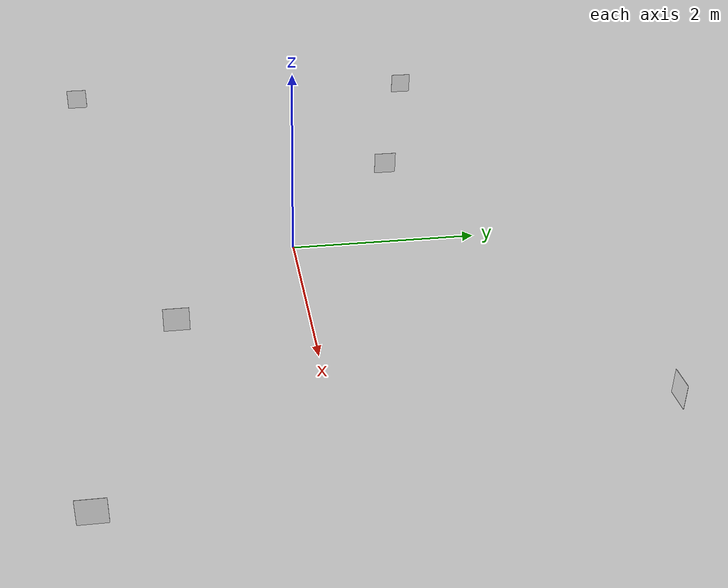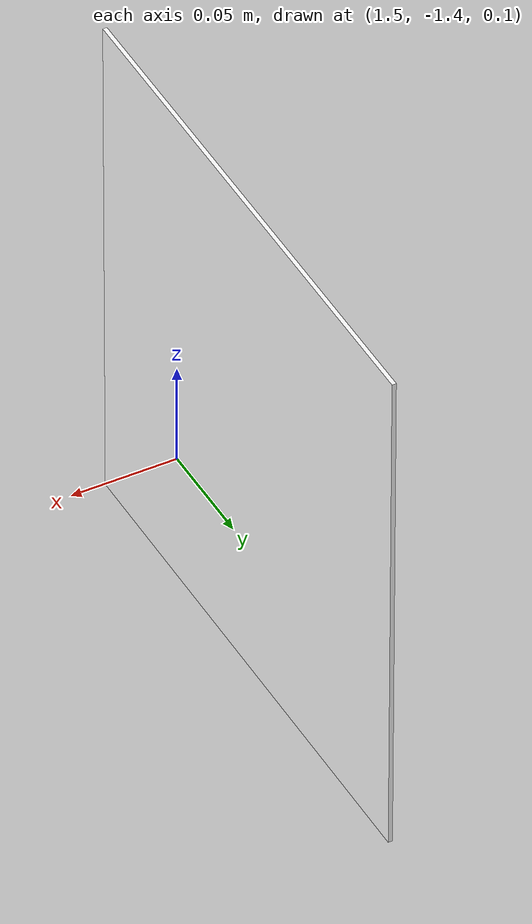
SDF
<?xml version="1.0"?>

<sdf version="1.7">

  <model name="apriltags_10cm">

    <static>true</static>

    <!-- TAG 0 - outside                                            -->
    <!-- Lower-left branch                                          -->
    <!-- Mounted on west outer wall and facing east                 -->

    <link name="tag36_11_00000">

      <pose>-3.99 -2.50 0.20 0 0 -1.570796</pose>

      <visual name="visual">

        <geometry>
          <box>
            <size>0.25 0.002 0.25</size>
          </box>
        </geometry>

        <material>

          <ambient>1 1 1 1</ambient>
          <diffuse>1 1 1 1</diffuse>
          <specular>0 0 0 1</specular>

          <pbr>
            <metal>

              <albedo_map>
                model://apriltags_10cm/materials/textures/tag36_11_00000.png
              </albedo_map>

              <roughness>1.0</roughness>
              <metalness>0.0</metalness>

            </metal>
          </pbr>

        </material>

        <cast_shadows>false</cast_shadows>

      </visual>

    </link>

    <!-- TAG 1 - inside                                             -->
    <!-- Lower-right L, inner leg                                   -->
    <!-- Internal wall: lower_right_vertical_link                   -->
    <!--   x = 1.55 (wall center), y = -2.10 to -0.50                -->
    <!-- Tag mounted on the wall's inner (west) face and facing west,-->
    <!-- i.e. into the arena interior                                -->

    <link name="tag36_11_00001">

      <!--
        Wall center is x = 1.55, inner face at x = 1.525.
        Tag sits just proud of that face, on the interior side.
      -->

      <pose>1.520 -1.30 0.20 0 0 1.570796</pose>

      <visual name="visual">

        <geometry>
          <box>
            <size>0.25 0.002 0.25</size>
          </box>
        </geometry>

        <material>

          <ambient>1 1 1 1</ambient>
          <diffuse>1 1 1 1</diffuse>
          <specular>0 0 0 1</specular>

          <pbr>
            <metal>

              <albedo_map>
                model://apriltags_10cm/materials/textures/tag36_11_00001.png
              </albedo_map>

              <roughness>1.0</roughness>
              <metalness>0.0</metalness>

            </metal>
          </pbr>

        </material>

        <cast_shadows>false</cast_shadows>

      </visual>

    </link>

    <!-- TAG 5 - outside                                            -->
    <!-- Lower-right branch                                         -->
    <!-- Mounted on east outer wall and facing west                 -->

    <link name="tag36_11_00005">

      <pose>3.99 -2.0 0.20 0 0 1.570796</pose>

      <visual name="visual">

        <geometry>
          <box>
            <size>0.25 0.002 0.25</size>
          </box>
        </geometry>

        <material>

          <ambient>1 1 1 1</ambient>
          <diffuse>1 1 1 1</diffuse>
          <specular>0 0 0 1</specular>

          <pbr>
            <metal>

              <albedo_map>
                model://apriltags_10cm/materials/textures/tag36_11_00002.png
              </albedo_map>

              <roughness>1.0</roughness>
              <metalness>0.0</metalness>

            </metal>
          </pbr>

        </material>

        <cast_shadows>false</cast_shadows>

      </visual>

    </link>

    <!-- TAG 3 - inside                                             -->
    <!-- Upper-left L, inner leg                                    -->
    <!-- Internal wall: upper_left_vertical_link                    -->
    <!--   x = -1.55 (wall center), y = 0.50 to 2.10                 -->
    <!-- Tag mounted on the wall's inner (east) face and facing east,-->
    <!-- i.e. into the arena interior                                -->

    <link name="tag36_11_00003">

      <!--
        Wall center is x = -1.55, inner face at x = -1.525.
        Tag sits just proud of that face, on the interior side.
      -->

      <pose>-1.520 1.30 0.20 0 0 -1.570796</pose>

      <visual name="visual">

        <geometry>
          <box>
            <size>0.25 0.002 0.25</size>
          </box>
        </geometry>

        <material>

          <ambient>1 1 1 1</ambient>
          <diffuse>1 1 1 1</diffuse>
          <specular>0 0 0 1</specular>

          <pbr>
            <metal>

              <albedo_map>
                model://apriltags_10cm/materials/textures/tag36_11_00003.png
              </albedo_map>

              <roughness>1.0</roughness>
              <metalness>0.0</metalness>

            </metal>
          </pbr>

        </material>

        <cast_shadows>false</cast_shadows>

      </visual>

    </link>

    <!-- TAG 4 - outside                                            -->
    <!-- Upper-left branch                                          -->
    <!-- Mounted on west outer wall and facing east                 -->

    <link name="tag36_11_00004">

      <pose>-3.99 2.0 0.20 0 0 -1.570796</pose>

      <visual name="visual">

        <geometry>
          <box>
            <size>0.25 0.002 0.25</size>
          </box>
        </geometry>

        <material>

          <ambient>1 1 1 1</ambient>
          <diffuse>1 1 1 1</diffuse>
          <specular>0 0 0 1</specular>

          <pbr>
            <metal>

              <albedo_map>
                model://apriltags_10cm/materials/textures/tag36_11_00004.png
              </albedo_map>

              <roughness>1.0</roughness>
              <metalness>0.0</metalness>

            </metal>
          </pbr>

        </material>

        <cast_shadows>false</cast_shadows>

      </visual>

    </link>

    <!-- TAG 2 - outside                                            -->
    <!-- Upper-right branch                                         -->
    <!-- Mounted on north outer wall and facing south               -->

    <link name="tag36_11_00002">

      <pose>3.15 2.99 0.20 0 0 3.141593</pose>

      <visual name="visual">

        <geometry>
          <box>
            <size>0.25 0.002 0.25</size>
          </box>
        </geometry>

        <material>

          <ambient>1 1 1 1</ambient>
          <diffuse>1 1 1 1</diffuse>
          <specular>0 0 0 1</specular>

          <pbr>
            <metal>

              <albedo_map>
                model://apriltags_10cm/materials/textures/tag36_11_00005.png
              </albedo_map>

              <roughness>1.0</roughness>
              <metalness>0.0</metalness>

            </metal>
          </pbr>

        </material>

        <cast_shadows>false</cast_shadows>

      </visual>

    </link>

  </model>

</sdf>
